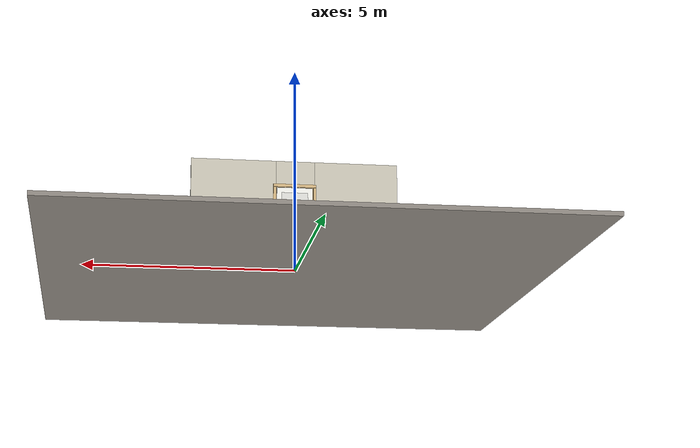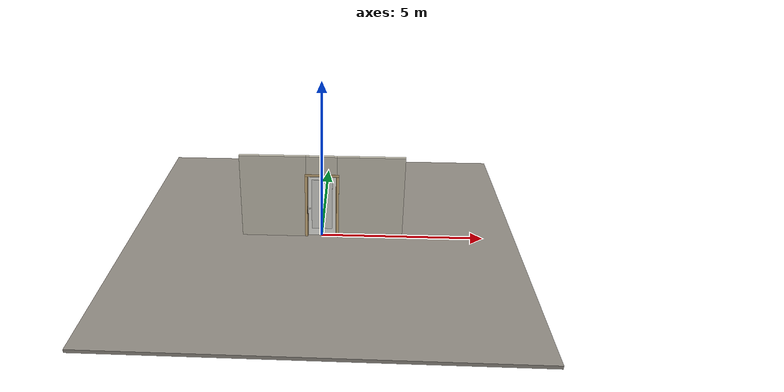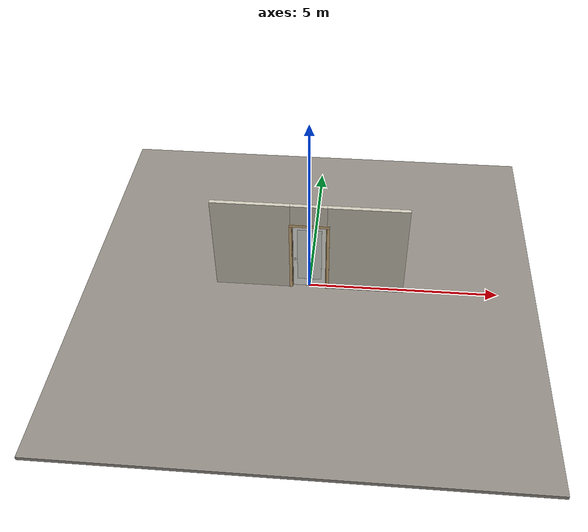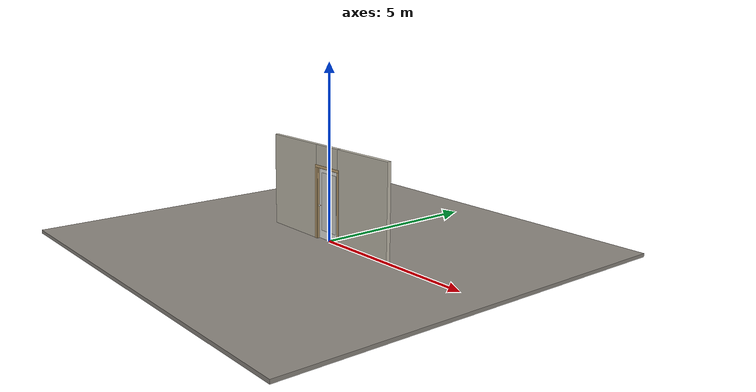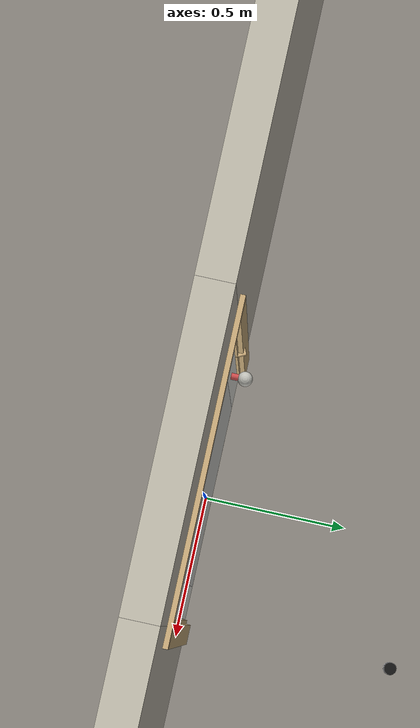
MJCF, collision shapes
<?xml version="1.0" ?>
<mujoco model="db0297_swing_single_full">
  <compiler angle="radian" meshdir="../../hardware" texturedir="../../textures" autolimits="true" inertiafromgeom="false"/>
  <option timestep="0.002" integrator="implicitfast" cone="elliptic" impratio="10" noslip_iterations="3">
    <flag multiccd="enable"/>
  </option>
  <size memory="16M"/>
  <default>
    <geom condim="4" solref="0.005 1" solimp="0.95 0.99 0.001"/>
    <joint solreflimit="0.005 1" solimplimit="0.95 0.99 0.001"/>
    <tendon solreflimit="0.005 1"/>
    <equality solref="0.002 1"/>
  </default>
  <visual>
    <headlight ambient="0.4 0.4 0.4" diffuse="0.7 0.7 0.7" specular="0.2 0.2 0.2"/>
    <quality shadowsize="4096"/>
    <map znear="0.01" zfar="60"/>
  </visual>
  <asset>
    <mesh name="hinge_e53abd72ad" file="hinge_e53abd72ad.obj"/>
    <mesh name="hinge_jamb_c17a76d68c" file="hinge_jamb_c17a76d68c.obj"/>
    <mesh name="knob_0ccd68d739" file="knob_0ccd68d739.obj"/>
    <material name="mat_floor" rgba="0.55 0.53 0.5 1" specular="0.2" shininess="0.15" reflectance="0"/>
    <material name="mat_wall" rgba="0.78 0.76 0.7 1" specular="0.2" shininess="0.1" reflectance="0"/>
    <material name="mat_leaf" rgba="0.93 0.93 0.91 1" specular="0.2" shininess="0.38" reflectance="0"/>
    <material name="mat_leaf_panel" rgba="0.856 0.856 0.837 1" specular="0.2" shininess="0.38" reflectance="0"/>
    <material name="mat_hinge" rgba="0.65 0.66 0.68 1" specular="0.74" shininess="0.5" reflectance="0.36"/>
    <material name="mat_op_hpl" rgba="0.75 0.75 0.72 1" specular="0.2" shininess="0.65" reflectance="0"/>
    <material name="mat_trim" rgba="0.85 0.66 0.3 1" specular="0.8" shininess="0.75" reflectance="0.4"/>
    <material name="mat_bolt" rgba="0.85 0.66 0.3 1" specular="0.8" shininess="0.75" reflectance="0.4"/>
    <material name="mat_frame" rgba="0.82 0.7 0.5 1" specular="0.2" shininess="0.45" reflectance="0"/>
    <material name="mat_bumper_stop" rgba="0.08 0.08 0.08 1" specular="0.2" shininess="0.1" reflectance="0"/>
    <material name="mat_stop_base" rgba="0.9 0.9 0.92 1" specular="0.8" shininess="0.9" reflectance="0.4"/>
    <texture name="skybox" type="skybox" builtin="gradient" rgb1="0.6 0.7 0.85" rgb2="0.9 0.92 0.95" width="256" height="256"/>
  </asset>
  <worldbody>
    <light name="sun" pos="1.5 -2.5 4" dir="-0.3 0.5 -0.8" directional="true" diffuse="0.8 0.8 0.8" specular="0.3 0.3 0.3" castshadow="true"/>
    <light name="fill" pos="-1.5 2.5 3" dir="0.3 -0.5 -0.7" directional="true" diffuse="0.35 0.35 0.4" castshadow="false"/>
    <camera name="robot_view" pos="0 -2.572687 1.734312" xyaxes="1 0 0 0 0.26963 0.962964" fovy="52"/>
    <camera name="far_view" pos="0 2.511687 1.734312" xyaxes="-1 0 0 0 -0.26963 0.962964" fovy="52"/>
    <camera name="iso" pos="-1.932062 -2.165938 2.141063" xyaxes="0.741536 -0.670913 0 0.242917 0.268487 0.932151" fovy="46"/>
    <camera name="detail_handle" pos="-0.1915 -0.86625 1.245" xyaxes="0.97561 0.219512 0 -0.070934 0.315262 0.94635" fovy="38"/>
    <geom name="floor" type="box" size="6 6 0.05" pos="0 0 -0.05" material="mat_floor" group="0" contype="1" conaffinity="1" friction="0.8 0.005 0.0001" density="2400"/>
    <geom name="wall_left" type="box" size="1.00775 0.0575 1.35" pos="-1.49225 -0.0305 1.35" material="mat_wall" group="0" contype="1" conaffinity="1" friction="0.6 0.005 0.0001" density="800"/>
    <geom name="wall_right" type="box" size="1.02275 0.0575 1.35" pos="1.47725 -0.0305 1.35" material="mat_wall" group="0" contype="1" conaffinity="1" friction="0.6 0.005 0.0001" density="800"/>
    <geom name="wall_header" type="box" size="0.4695 0.0575 0.303" pos="-0.015 -0.0305 2.397" material="mat_wall" group="0" contype="1" conaffinity="1" friction="0.6 0.005 0.0001" density="800"/>
    <geom name="hinge_0_jamb" type="mesh" mesh="hinge_jamb_c17a76d68c" pos="0.4325 0.027 0.259" quat="0 0 0 1" material="mat_hinge" group="1" contype="0" conaffinity="0" density="7850"/>
    <geom name="hinge_1_jamb" type="mesh" mesh="hinge_jamb_c17a76d68c" pos="0.4325 0.027 1.025" quat="0 0 0 1" material="mat_hinge" group="1" contype="0" conaffinity="0" density="7850"/>
    <geom name="hinge_2_jamb" type="mesh" mesh="hinge_jamb_c17a76d68c" pos="0.4325 0.027 1.861" quat="0 0 0 1" material="mat_hinge" group="1" contype="0" conaffinity="0" density="7850"/>
    <geom name="jamb_hinge" type="box" size="0.0095 0.0575 1.0225" pos="0.445 -0.0305 1.0225" material="mat_frame" group="0" contype="1" conaffinity="1" friction="0.6 0.005 0.0001" density="400"/>
    <geom name="strike_965_wall_n" type="box" size="0.0245 0.040075 0.0167" pos="-0.46 -0.047925 0.965" material="mat_frame" group="0" contype="1" conaffinity="1" friction="0.6 0.005 0.0001" density="400"/>
    <geom name="strike_965_wall_p" type="box" size="0.0245 0.008 0.0167" pos="-0.46 0.01585 0.965" material="mat_frame" group="0" contype="1" conaffinity="1" friction="0.6 0.005 0.0001" density="400"/>
    <geom name="strike_965_ramp" type="box" size="0.0245 0.01649 0.0167" pos="-0.464636 0.028673 0.965" quat="0.977148 0 0 0.212558" material="mat_frame" group="0" contype="1" conaffinity="1" friction="0.12 0.005 0.0001" density="400"/>
    <geom name="strike_965_back" type="box" size="0.01615 0.00785 0.0167" pos="-0.46835 0 0.965" material="mat_frame" group="0" contype="1" conaffinity="1" friction="0.6 0.005 0.0001" density="400"/>
    <geom name="jamb_strike_0" type="box" size="0.0245 0.0575 0.47415" pos="-0.46 -0.0305 0.47415" material="mat_frame" group="0" contype="1" conaffinity="1" friction="0.6 0.005 0.0001" density="400"/>
    <geom name="jamb_strike_1" type="box" size="0.0245 0.0575 0.53165" pos="-0.46 -0.0305 1.51335" material="mat_frame" group="0" contype="1" conaffinity="1" friction="0.6 0.005 0.0001" density="400"/>
    <geom name="jamb_head" type="box" size="0.4695 0.0575 0.0095" pos="-0.015 -0.0305 2.0545" material="mat_frame" group="0" contype="1" conaffinity="1" friction="0.6 0.005 0.0001" density="400"/>
    <geom name="head_stud" type="box" size="0.4695 0.0575 0.015" pos="-0.015 -0.0305 2.079" material="mat_wall" group="0" contype="1" conaffinity="1" friction="0.6 0.005 0.0001" density="500"/>
    <geom name="stop_hinge" type="box" size="0.0055 0.016 1.0225" pos="0.43 -0.0365 1.0225" material="mat_frame" group="0" contype="1" conaffinity="1" friction="0.6 0.005 0.0001" density="400"/>
    <geom name="stop_strike" type="box" size="0.0055 0.016 1.0225" pos="-0.43 -0.0365 1.0225" material="mat_frame" group="0" contype="1" conaffinity="1" friction="0.6 0.005 0.0001" density="400"/>
    <geom name="stop_head" type="box" size="0.4355 0.016 0.0055" pos="0 -0.0365 2.0395" material="mat_frame" group="0" contype="1" conaffinity="1" friction="0.6 0.005 0.0001" density="400"/>
    <geom name="casing_l_n" type="box" size="0.035 0.008 1.032" pos="-0.4845 -0.096 1.0225" material="mat_frame" group="2" contype="0" conaffinity="0" density="400"/>
    <geom name="casing_r_n" type="box" size="0.035 0.008 1.032" pos="0.4845 -0.096 1.0225" material="mat_frame" group="2" contype="0" conaffinity="0" density="400"/>
    <geom name="casing_h_n" type="box" size="0.5195 0.008 0.035" pos="0 -0.096 2.094" material="mat_frame" group="2" contype="0" conaffinity="0" density="400"/>
    <geom name="casing_l_p" type="box" size="0.035 0.008 1.032" pos="-0.4845 0.035 1.0225" material="mat_frame" group="2" contype="0" conaffinity="0" density="400"/>
    <geom name="casing_r_p" type="box" size="0.035 0.008 1.032" pos="0.4845 0.035 1.0225" material="mat_frame" group="2" contype="0" conaffinity="0" density="400"/>
    <geom name="casing_h_p" type="box" size="0.5195 0.008 0.035" pos="0 0.035 2.094" material="mat_frame" group="2" contype="0" conaffinity="0" density="400"/>
    <geom name="door_stop_base" type="cylinder" size="0.022 0.003" pos="0.4485 0.7614 0.003" material="mat_stop_base" group="0" contype="1" conaffinity="1" friction="0.6 0.005 0.0001" density="7850"/>
    <geom name="door_stop_post" type="cylinder" size="0.012 0.0245" pos="0.4485 0.7614 0.0305" material="mat_stop_base" group="0" contype="1" conaffinity="1" friction="0.6 0.005 0.0001" density="7850"/>
    <geom name="door_stop_bumper" type="cylinder" size="0.022 0.02" pos="0.4485 0.7614 0.075" material="mat_bumper_stop" group="0" contype="1" conaffinity="1" friction="0.6 0.005 0.0001" density="1100"/>
    <site name="approach_point" pos="0 -1.5 0" quat="1 0 0 0" size="0.05" rgba="0.2 0.9 0.2 0.5" group="4"/>
    <site name="goal_point" pos="0 1.5 0" quat="1 0 0 0" size="0.05" rgba="0.2 0.9 0.2 0.5" group="4"/>
    <site name="door_plane_center" pos="0 0 1.0225" quat="1 0 0 0" size="0.02" rgba="0.2 0.9 0.2 0.5" group="4"/>
    <body name="leaf" pos="0.4355 0 0">
      <inertial pos="-0.431052 0.000143 1.025219" mass="46.208655" quat="0.499851 0.500329 -0.499666 0.500153" diaginertia="2.935788945 15.937115157 18.860313634"/>
      <joint name="leaf_hinge" type="hinge" axis="0 0 -1" pos="-0.003 0.027 0" limited="true" range="0 1.570796" damping="0.254501" frictionloss="1.159196" armature="0.02"/>
      <geom name="leaf_slab" type="box" size="0.432 0.02 1.016" pos="-0.435 0 1.025" material="mat_leaf" group="0" contype="1" conaffinity="1" friction="0.4 0.005 0.0001" density="1"/>
      <geom name="leaf_panel_0_n" type="box" size="0.31696 0.003 0.83344" pos="-0.435 -0.023 1.08596" material="mat_leaf_panel" group="1" contype="0" conaffinity="0" density="1"/>
      <geom name="leaf_panel_0_p" type="box" size="0.31696 0.003 0.83344" pos="-0.435 0.023 1.08596" material="mat_leaf_panel" group="1" contype="0" conaffinity="0" density="1"/>
      <geom name="hinge_0" type="mesh" mesh="hinge_e53abd72ad" pos="-0.003 0.027 0.259" quat="0 0 0 1" material="mat_hinge" group="1" contype="0" conaffinity="0" density="7850"/>
      <geom name="hinge_1" type="mesh" mesh="hinge_e53abd72ad" pos="-0.003 0.027 1.025" quat="0 0 0 1" material="mat_hinge" group="1" contype="0" conaffinity="0" density="7850"/>
      <geom name="hinge_2" type="mesh" mesh="hinge_e53abd72ad" pos="-0.003 0.027 1.861" quat="0 0 0 1" material="mat_hinge" group="1" contype="0" conaffinity="0" density="7850"/>
      <geom name="leaf_latch_bolt_faceplate" type="box" size="0.0006 0.01235 0.0267" pos="-0.8664 0 0.965" material="mat_bolt" group="1" contype="0" conaffinity="0" density="8500"/>
      <site name="leaf_edge_mid" pos="-0.867 0 1.016" quat="1 0 0 0" size="0.02" rgba="0.2 0.9 0.2 0.5" group="4"/>
      <body name="leaf_handle" pos="-0.807 0 0.965">
        <inertial pos="0 0 0" mass="1.15452" quat="0.5 0.5 0.5 0.5" diaginertia="0.000298738 0.004154329 0.004154329"/>
        <joint name="leaf_handle_hinge" type="hinge" axis="0 1 0" limited="true" range="0 0.85" damping="0.128367" frictionloss="0.032" stiffness="0.4" springref="-0.5" armature="0.01"/>
        <geom name="leaf_handle_spindle" type="cylinder" size="0.006 0.028" pos="0 0 0" quat="0.707107 -0.707107 0 0" material="mat_op_hpl" group="1" contype="0" conaffinity="0" density="7850"/>
        <geom name="leaf_handle_knob_n" type="mesh" mesh="knob_0ccd68d739" pos="0 -0.02 0" quat="0 0 -0.707107 0.707107" material="mat_op_hpl" group="1" contype="0" conaffinity="0" density="3000"/>
        <geom name="leaf_handle_knob_col_n" type="sphere" size="0.02475" pos="0 -0.06625 0" material="mat_op_hpl" group="0" contype="1" conaffinity="1" friction="0.9 0.01 0.0001" density="3000"/>
        <geom name="leaf_handle_knob_neck_n" type="cylinder" size="0.011 0.012" pos="0 -0.032 0" quat="0.707107 -0.707107 0 0" material="mat_op_hpl" group="3" contype="1" conaffinity="1" rgba="0.8 0.3 0.3 0.25" friction="0.6 0.005 0.0001" density="3000"/>
        <geom name="leaf_handle_knob_p" type="mesh" mesh="knob_0ccd68d739" pos="0 0.02 0" quat="0 0 0.707107 0.707107" material="mat_op_hpl" group="1" contype="0" conaffinity="0" density="3000"/>
        <geom name="leaf_handle_knob_col_p" type="sphere" size="0.02475" pos="0 0.06625 0" material="mat_op_hpl" group="0" contype="1" conaffinity="1" friction="0.9 0.01 0.0001" density="3000"/>
        <geom name="leaf_handle_knob_neck_p" type="cylinder" size="0.011 0.012" pos="0 0.032 0" quat="0.707107 -0.707107 0 0" material="mat_op_hpl" group="3" contype="1" conaffinity="1" rgba="0.8 0.3 0.3 0.25" friction="0.6 0.005 0.0001" density="3000"/>
        <site name="leaf_handle_grip_n" pos="0 -0.06625 0" quat="1 0 0 0" size="0.012" rgba="0.2 0.9 0.2 0.5" group="4"/>
        <site name="leaf_handle_grip_p" pos="0 0.06625 0" quat="1 0 0 0" size="0.012" rgba="0.2 0.9 0.2 0.5" group="4"/>
      </body>
      <body name="leaf_latch_bolt" pos="-0.867 0 0.965">
        <inertial pos="0.00865 0 0" mass="0.041419" quat="0.92388 0.382683 0 0" diaginertia="0.000000798 0.000005598 0.000005598"/>
        <joint name="leaf_latch_bolt_slide" type="slide" axis="1 0 0" limited="true" range="0 0.0127" damping="2" frictionloss="0.3" stiffness="300" springref="-0.008333" armature="0.1"/>
        <geom name="leaf_latch_bolt_capsule" type="capsule" size="0.00635 0.015" pos="0.00865 0 0" quat="0.707107 0 -0.707107 0" material="mat_bolt" group="0" contype="1" conaffinity="1" friction="0.2 0.005 0.0001" density="8500"/>
      </body>
    </body>
  </worldbody>
  <tendon>
    <fixed name="leaf_latch_bolt_coupling" limited="true" range="0 10">
      <joint joint="leaf_latch_bolt_slide" coef="1"/>
      <joint joint="leaf_handle_hinge" coef="-0.016933"/>
    </fixed>
  </tendon>
  <sensor>
    <jointpos name="leaf_hinge_pos" joint="leaf_hinge"/>
    <jointvel name="leaf_hinge_vel" joint="leaf_hinge"/>
    <jointpos name="leaf_handle_hinge_pos" joint="leaf_handle_hinge"/>
    <jointvel name="leaf_handle_hinge_vel" joint="leaf_handle_hinge"/>
    <jointpos name="leaf_latch_bolt_slide_pos" joint="leaf_latch_bolt_slide"/>
    <jointvel name="leaf_latch_bolt_slide_vel" joint="leaf_latch_bolt_slide"/>
  </sensor>
</mujoco>
